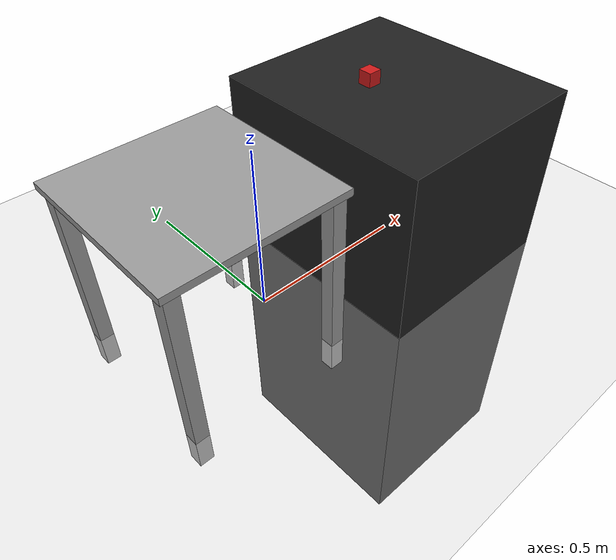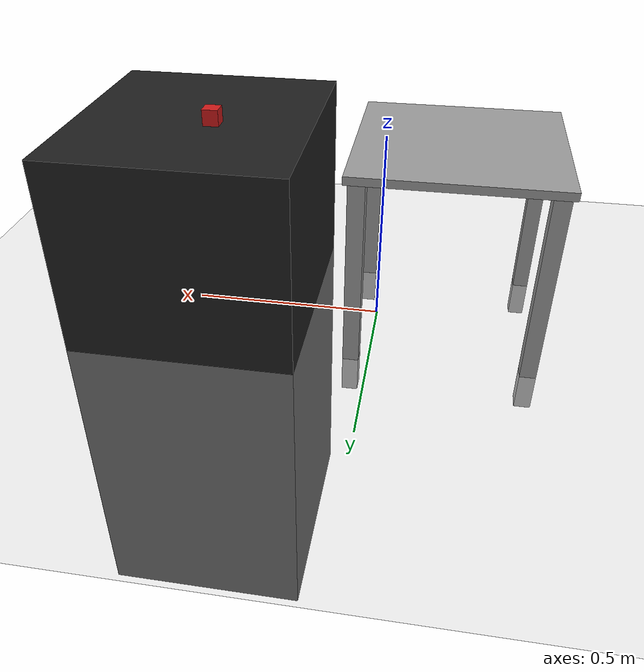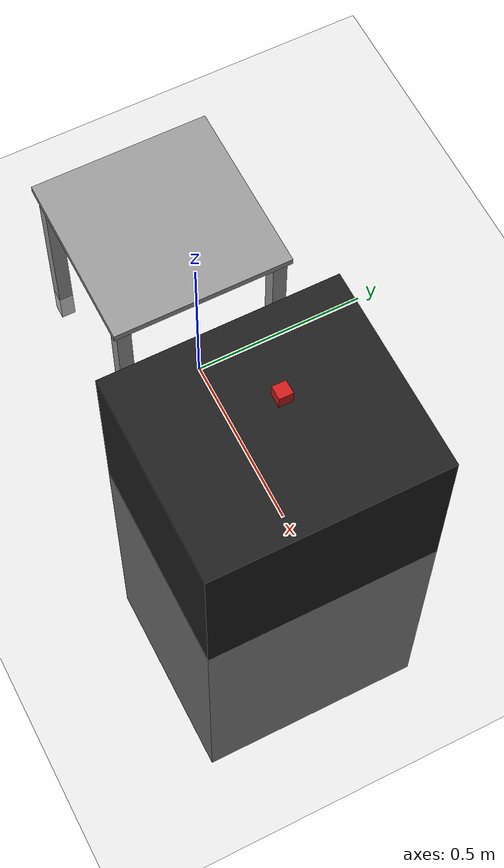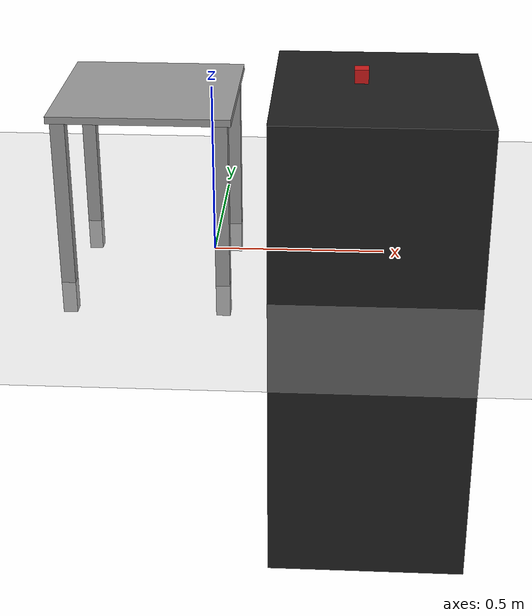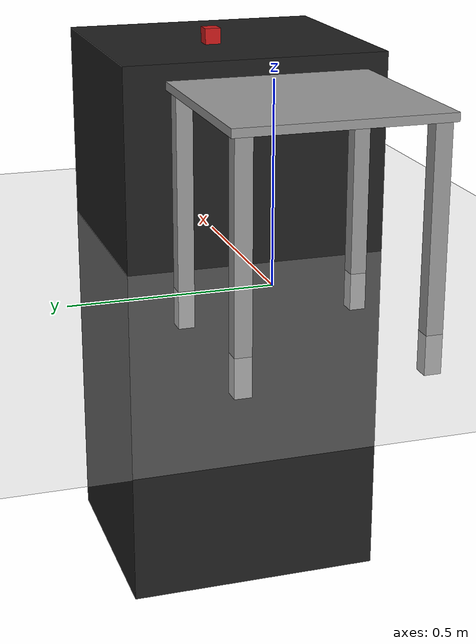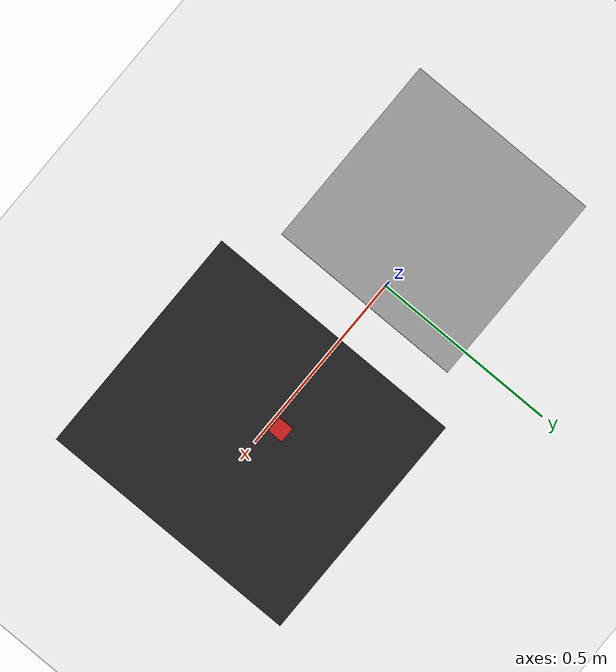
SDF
<sdf version="1.6">
 <world name="default">
  <plugin name="ros_link_attacher_plugin" filename="libgazebo_ros_link_attacher.so"/>
  <light name="sun" type="directional">
   <pose>0 0 10 0 -0 0</pose>
   <diffuse>0.8 0.8 0.8 1</diffuse>
   <specular>0.2 0.2 0.2 1</specular>
   <attenuation>
    <range>1000</range>
    <constant>0.9</constant>
    <linear>0.01</linear>
    <quadratic>0.001</quadratic>
   </attenuation>
   <direction>-0.5 0.1 -0.9</direction>
  </light>
  <model name="ground_plane">
   <static>1</static>
   <link name="link">
    <collision name="collision">
     <geometry><plane><normal>0 0 1</normal><size>100 100</size></plane></geometry>
     <surface><friction><ode><mu>100</mu><mu2>50</mu2></ode></friction></surface>
    </collision>
    <visual name="visual">
     <cast_shadows>0</cast_shadows>
     <geometry><plane><normal>0 0 1</normal><size>100 100</size></plane></geometry>
     <material>
      <script><uri>file://media/materials/scripts/gazebo.material</uri><name>Gazebo/Grey</name></script>
     </material>
    </visual>
   </link>
  </model>
  <gravity>0 0 -9.8</gravity>
  <magnetic_field>6e-06 2.3e-05 -4.2e-05</magnetic_field>
  <atmosphere type="adiabatic"/>
  <physics name="default_physics" default="0" type="ode">
   <max_step_size>0.001</max_step_size>
   <real_time_factor>1</real_time_factor>
   <real_time_update_rate>1000</real_time_update_rate>
  </physics>
  <scene><ambient>0.4 0.4 0.4 1</ambient><background>0.7 0.7 0.7 1</background><shadows>1</shadows></scene>
  <spherical_coordinates>
   <surface_model>EARTH_WGS84</surface_model>
   <latitude_deg>0</latitude_deg>
   <longitude_deg>0</longitude_deg>
   <elevation>0</elevation>
   <heading_deg>0</heading_deg>
  </spherical_coordinates>
  <model name="ur5_base">
   <static>1</static>
   <link name="top_plate">
    <pose>0 0 0.58 0 -0 0</pose>
    <collision name="top_plate_collision">
     <geometry><box><size>0.5 0.5 0.02</size></box></geometry>
     <surface><contact><collide_bitmask>1</collide_bitmask></contact></surface>
    </collision>
    <visual name="top_plate_visual">
     <geometry><box><size>0.5 0.5 0.02</size></box></geometry>
     <material>
      <script><uri>file://media/materials/scripts/gazebo.material</uri><name>Gazebo/Grey</name></script>
     </material>
    </visual>
   </link>
   <link name="leg1">
    <pose>0.22 0.22 0.285 0 -0 0</pose>
    <collision name="leg1_collision"><geometry><box><size>0.04 0.04 0.57</size></box></geometry></collision>
    <visual name="leg1_visual">
     <geometry><box><size>0.04 0.04 0.57</size></box></geometry>
     <material>
      <script><uri>file://media/materials/scripts/gazebo.material</uri><name>Gazebo/Grey</name></script>
     </material>
    </visual>
   </link>
   <link name="leg2">
    <pose>-0.22 0.22 0.285 0 -0 0</pose>
    <collision name="leg2_collision"><geometry><box><size>0.04 0.04 0.57</size></box></geometry></collision>
    <visual name="leg2_visual">
     <geometry><box><size>0.04 0.04 0.57</size></box></geometry>
     <material>
      <script><uri>file://media/materials/scripts/gazebo.material</uri><name>Gazebo/Grey</name></script>
     </material>
    </visual>
   </link>
   <link name="leg3">
    <pose>0.22 -0.22 0.285 0 -0 0</pose>
    <collision name="leg3_collision"><geometry><box><size>0.04 0.04 0.57</size></box></geometry></collision>
    <visual name="leg3_visual">
     <geometry><box><size>0.04 0.04 0.57</size></box></geometry>
     <material>
      <script><uri>file://media/materials/scripts/gazebo.material</uri><name>Gazebo/Grey</name></script>
     </material>
    </visual>
   </link>
   <link name="leg4">
    <pose>-0.22 -0.22 0.285 0 -0 0</pose>
    <collision name="leg4_collision"><geometry><box><size>0.04 0.04 0.57</size></box></geometry></collision>
    <visual name="leg4_visual">
     <geometry><box><size>0.04 0.04 0.57</size></box></geometry>
     <material>
      <script><uri>file://media/materials/scripts/gazebo.material</uri><name>Gazebo/Grey</name></script>
     </material>
    </visual>
   </link>
   <pose>-0.1759 -0.012384 -0.095642 0 -0 0</pose>
  </model>
  <audio><device>default</device></audio>
  <model name="ur3_table">
   <link name="link">
    <inertial>
     <mass>1</mass>
     <inertia>
      <ixx>0.166667</ixx>
      <ixy>0</ixy>
      <ixz>0</ixz>
      <iyy>0.166667</iyy>
      <iyz>0</iyz>
      <izz>0.166667</izz>
     </inertia>
    </inertial>
    <visual name="visual">
     <geometry><box><size>0.595883 0.67312 1.42437</size></box></geometry>
     <material>
      <script><name>Gazebo/Black</name><uri>file://media/materials/scripts/gazebo.material</uri></script>
      <shader type="pixel"/>
     </material>
    </visual>
    <collision name="collision">
     <geometry><box><size>0.595883 0.67312 1.42437</size></box></geometry>
     <surface>
      <friction>
       <ode><mu>1</mu><mu2>1</mu2><fdir1>0 0 0</fdir1><slip1>0</slip1><slip2>0</slip2></ode>
       <torsional>
        <coefficient>1</coefficient>
        <patch_radius>0</patch_radius>
        <surface_radius>0</surface_radius>
        <use_patch_radius>1</use_patch_radius>
        <ode><slip>0</slip></ode>
       </torsional>
      </friction>
      <bounce><restitution_coefficient>0</restitution_coefficient><threshold>1e+06</threshold></bounce>
      <contact>
       <collide_without_contact>0</collide_without_contact>
       <collide_without_contact_bitmask>1</collide_without_contact_bitmask>
       <collide_bitmask>1</collide_bitmask>
       <ode>
        <soft_cfm>0</soft_cfm>
        <soft_erp>0.2</soft_erp>
        <kp>1e+13</kp>
        <kd>1</kd>
        <max_vel>0.01</max_vel>
        <min_depth>0</min_depth>
       </ode>
       <bullet>
        <split_impulse>1</split_impulse>
        <split_impulse_penetration_threshold>-0.01</split_impulse_penetration_threshold>
        <soft_cfm>0</soft_cfm>
        <soft_erp>0.2</soft_erp>
        <kp>1e+13</kp>
        <kd>1</kd>
       </bullet>
      </contact>
     </surface>
    </collision>
   </link>
   <static>1</static>
   <pose>0.472855 -0.021344 -0.197815 0 -0 0</pose>
  </model>
  <model name="box_red">
   <link name="red link">
    <inertial>
     <mass>0.01</mass>
     <inertia><ixx>1e-05</ixx><ixy>0</ixy><ixz>0</ixz><iyy>1e-05</iyy><iyz>0</iyz><izz>1e-05</izz></inertia>
    </inertial>
    <collision name="collision">
     <geometry><box><size>0.04 0.04 0.04</size></box></geometry>
     <surface>
      <friction><ode><mu>50</mu><mu2>50</mu2></ode></friction>
      <contact><ode><min_depth>0.001</min_depth><max_vel>0</max_vel></ode></contact>
     </surface>
    </collision>
    <visual name="visual">
     <geometry><box><size>0.04 0.04 0.04</size></box></geometry>
     <material>
      <ambient>0.8 0.1 0.1 1</ambient>
      <diffuse>0.8 0.1 0.1 1</diffuse>
      <specular>0 0 0 0</specular>
      <emissive>0 0 0 1</emissive>
     </material>
    </visual>
   </link>
   <pose>0.421424 0.025145 0.534342 0 -0 0</pose>
  </model>
 </world>
</sdf>
